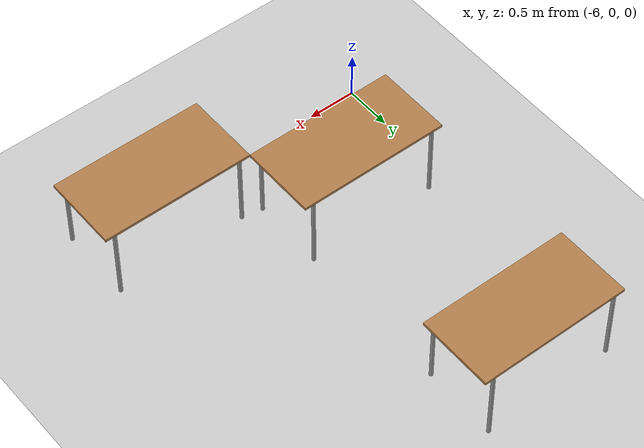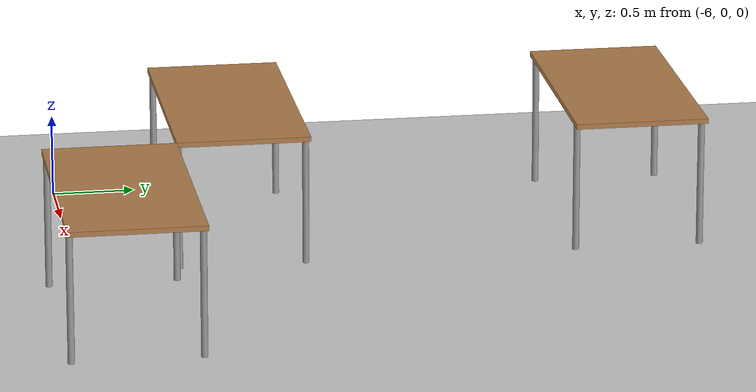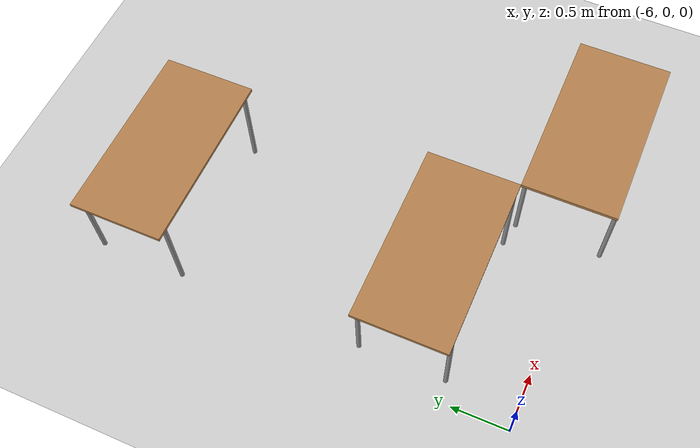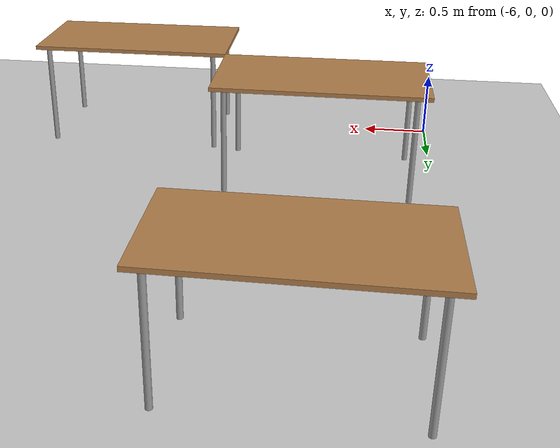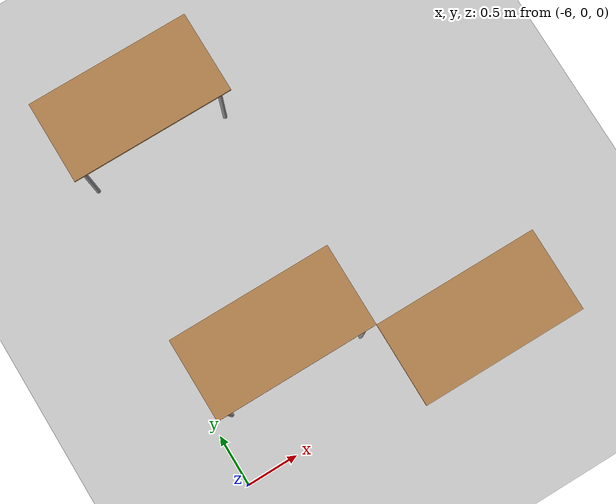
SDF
<sdf version="1.6">
 <world name="default">
  <model name="ground_plane">
   <static>1</static>
   <link name="link">
    <collision name="collision">
     <geometry><plane><normal>0 0 1</normal><size>100 100</size></plane></geometry>
     <surface><friction><ode><mu>100</mu><mu2>50</mu2></ode></friction></surface>
    </collision>
    <visual name="visual">
     <cast_shadows>0</cast_shadows>
     <geometry><plane><normal>0 0 1</normal><size>100 100</size></plane></geometry>
     <material>
      <script><uri>file://media/materials/scripts/gazebo.material</uri><name>Gazebo/Grey</name></script>
     </material>
    </visual>
   </link>
  </model>
  <model name="tablealt_0_clone_7">
   <link name="link">
    <inertial>
     <mass>1</mass>
     <inertia><ixx>1</ixx><ixy>0</ixy><ixz>0</ixz><iyy>1</iyy><iyz>0</iyz><izz>1</izz></inertia>
    </inertial>
    <visual name="back_right_leg">
     <pose>-0.68 -0.38 0.4 0 -0 0</pose>
     <geometry><cylinder><radius>0.02</radius><length>0.8</length></cylinder></geometry>
     <material>
      <script><uri>file://media/materials/scripts/gazebo.material</uri><name>Gazebo/Grey</name></script>
      <shader type="pixel"><normal_map>__default__</normal_map></shader>
      <ambient>0.3 0.3 0.3 1</ambient>
      <diffuse>0.7 0.7 0.7 1</diffuse>
      <specular>0.01 0.01 0.01 1</specular>
      <emissive>0 0 0 1</emissive>
     </material>
    </visual>
    <visual name="back_left_leg">
     <pose>-0.68 0.38 0.4 0 -0 0</pose>
     <geometry><cylinder><radius>0.02</radius><length>0.8</length></cylinder></geometry>
     <material>
      <script><uri>file://media/materials/scripts/gazebo.material</uri><name>Gazebo/Grey</name></script>
      <shader type="pixel"><normal_map>__default__</normal_map></shader>
      <ambient>0.3 0.3 0.3 1</ambient>
      <diffuse>0.7 0.7 0.7 1</diffuse>
      <specular>0.01 0.01 0.01 1</specular>
      <emissive>0 0 0 1</emissive>
     </material>
    </visual>
    <visual name="visual1">
     <pose>0 0 0.8 0 -0 0</pose>
     <geometry><box><size>1.57 0.8 0.03</size></box></geometry>
     <material>
      <script><uri>file://media/materials/scripts/gazebo.material</uri><name>Gazebo/Wood</name></script>
      <shader type="pixel"><normal_map>__default__</normal_map></shader>
      <ambient>0.92 0.92 0.68 1</ambient>
      <diffuse>1 1 1 1</diffuse>
      <specular>0.2 0.2 0.2 1</specular>
      <emissive>0 0 0 1</emissive>
     </material>
    </visual>
    <visual name="front_left_leg">
     <pose>0.68 0.38 0.4 0 -0 0</pose>
     <geometry><cylinder><radius>0.02</radius><length>0.8</length></cylinder></geometry>
     <material>
      <script><uri>file://media/materials/scripts/gazebo.material</uri><name>Gazebo/Grey</name></script>
      <shader type="pixel"><normal_map>__default__</normal_map></shader>
      <ambient>0.3 0.3 0.3 1</ambient>
      <diffuse>0.7 0.7 0.7 1</diffuse>
      <specular>0.01 0.01 0.01 1</specular>
      <emissive>0 0 0 1</emissive>
     </material>
    </visual>
    <visual name="front_right_leg">
     <pose>0.68 -0.38 0.4 0 -0 0</pose>
     <geometry><cylinder><radius>0.02</radius><length>0.8</length></cylinder></geometry>
     <material>
      <script><uri>file://media/materials/scripts/gazebo.material</uri><name>Gazebo/Grey</name></script>
      <shader type="pixel"><normal_map>__default__</normal_map></shader>
      <ambient>0.3 0.3 0.3 1</ambient>
      <diffuse>0.7 0.7 0.7 1</diffuse>
      <specular>0.01 0.01 0.01 1</specular>
      <emissive>0 0 0 1</emissive>
     </material>
    </visual>
    <collision name="front_right_leg">
     <pose>0.68 -0.38 0.4 0 -0 0</pose>
     <geometry><cylinder><radius>0.02</radius><length>0.8</length></cylinder></geometry>
     <surface>
      <friction>
       <ode><mu>1</mu><mu2>1</mu2><fdir1>0 0 0</fdir1><slip1>0</slip1><slip2>0</slip2></ode>
       <torsional>
        <coefficient>1</coefficient>
        <patch_radius>0</patch_radius>
        <surface_radius>0</surface_radius>
        <use_patch_radius>1</use_patch_radius>
        <ode><slip>0</slip></ode>
       </torsional>
      </friction>
      <bounce><restitution_coefficient>0</restitution_coefficient><threshold>1e+06</threshold></bounce>
      <contact>
       <collide_without_contact>0</collide_without_contact>
       <collide_without_contact_bitmask>1</collide_without_contact_bitmask>
       <collide_bitmask>1</collide_bitmask>
       <ode>
        <soft_cfm>0</soft_cfm>
        <soft_erp>0.2</soft_erp>
        <kp>1e+13</kp>
        <kd>1</kd>
        <max_vel>0.01</max_vel>
        <min_depth>0</min_depth>
       </ode>
       <bullet>
        <split_impulse>1</split_impulse>
        <split_impulse_penetration_threshold>-0.01</split_impulse_penetration_threshold>
        <soft_cfm>0</soft_cfm>
        <soft_erp>0.2</soft_erp>
        <kp>1e+13</kp>
        <kd>1</kd>
       </bullet>
      </contact>
     </surface>
    </collision>
    <collision name="surface">
     <pose>0 0 0.8 0 -0 0</pose>
     <geometry><box><size>1.5 0.8 0.03</size></box></geometry>
     <surface>
      <friction>
       <ode><mu>0.6</mu><mu2>0.6</mu2><fdir1>0 0 0</fdir1><slip1>0</slip1><slip2>0</slip2></ode>
       <torsional>
        <coefficient>1</coefficient>
        <patch_radius>0</patch_radius>
        <surface_radius>0</surface_radius>
        <use_patch_radius>1</use_patch_radius>
        <ode><slip>0</slip></ode>
       </torsional>
      </friction>
      <bounce><restitution_coefficient>0</restitution_coefficient><threshold>1e+06</threshold></bounce>
      <contact>
       <collide_without_contact>0</collide_without_contact>
       <collide_without_contact_bitmask>1</collide_without_contact_bitmask>
       <collide_bitmask>1</collide_bitmask>
       <ode>
        <soft_cfm>0</soft_cfm>
        <soft_erp>0.2</soft_erp>
        <kp>1e+13</kp>
        <kd>1</kd>
        <max_vel>0.01</max_vel>
        <min_depth>0</min_depth>
       </ode>
       <bullet>
        <split_impulse>1</split_impulse>
        <split_impulse_penetration_threshold>-0.01</split_impulse_penetration_threshold>
        <soft_cfm>0</soft_cfm>
        <soft_erp>0.2</soft_erp>
        <kp>1e+13</kp>
        <kd>1</kd>
       </bullet>
      </contact>
     </surface>
    </collision>
    <collision name="front_left_leg">
     <pose>0.68 0.38 0.4 0 -0 0</pose>
     <geometry><cylinder><radius>0.02</radius><length>0.8</length></cylinder></geometry>
     <surface>
      <friction>
       <ode><mu>1</mu><mu2>1</mu2><fdir1>0 0 0</fdir1><slip1>0</slip1><slip2>0</slip2></ode>
       <torsional>
        <coefficient>1</coefficient>
        <patch_radius>0</patch_radius>
        <surface_radius>0</surface_radius>
        <use_patch_radius>1</use_patch_radius>
        <ode><slip>0</slip></ode>
       </torsional>
      </friction>
      <bounce><restitution_coefficient>0</restitution_coefficient><threshold>1e+06</threshold></bounce>
      <contact>
       <collide_without_contact>0</collide_without_contact>
       <collide_without_contact_bitmask>1</collide_without_contact_bitmask>
       <collide_bitmask>1</collide_bitmask>
       <ode>
        <soft_cfm>0</soft_cfm>
        <soft_erp>0.2</soft_erp>
        <kp>1e+13</kp>
        <kd>1</kd>
        <max_vel>0.01</max_vel>
        <min_depth>0</min_depth>
       </ode>
       <bullet>
        <split_impulse>1</split_impulse>
        <split_impulse_penetration_threshold>-0.01</split_impulse_penetration_threshold>
        <soft_cfm>0</soft_cfm>
        <soft_erp>0.2</soft_erp>
        <kp>1e+13</kp>
        <kd>1</kd>
       </bullet>
      </contact>
     </surface>
    </collision>
    <collision name="back_left_leg">
     <pose>-0.68 0.38 0.4 0 -0 0</pose>
     <geometry><cylinder><radius>0.02</radius><length>0.8</length></cylinder></geometry>
     <surface>
      <friction>
       <ode><mu>1</mu><mu2>1</mu2><fdir1>0 0 0</fdir1><slip1>0</slip1><slip2>0</slip2></ode>
       <torsional>
        <coefficient>1</coefficient>
        <patch_radius>0</patch_radius>
        <surface_radius>0</surface_radius>
        <use_patch_radius>1</use_patch_radius>
        <ode><slip>0</slip></ode>
       </torsional>
      </friction>
      <bounce><restitution_coefficient>0</restitution_coefficient><threshold>1e+06</threshold></bounce>
      <contact>
       <collide_without_contact>0</collide_without_contact>
       <collide_without_contact_bitmask>1</collide_without_contact_bitmask>
       <collide_bitmask>1</collide_bitmask>
       <ode>
        <soft_cfm>0</soft_cfm>
        <soft_erp>0.2</soft_erp>
        <kp>1e+13</kp>
        <kd>1</kd>
        <max_vel>0.01</max_vel>
        <min_depth>0</min_depth>
       </ode>
       <bullet>
        <split_impulse>1</split_impulse>
        <split_impulse_penetration_threshold>-0.01</split_impulse_penetration_threshold>
        <soft_cfm>0</soft_cfm>
        <soft_erp>0.2</soft_erp>
        <kp>1e+13</kp>
        <kd>1</kd>
       </bullet>
      </contact>
     </surface>
    </collision>
    <collision name="back_right_leg">
     <pose>-0.68 -0.38 0.4 0 -0 0</pose>
     <geometry><cylinder><radius>0.02</radius><length>0.8</length></cylinder></geometry>
     <surface>
      <friction>
       <ode><mu>1</mu><mu2>1</mu2><fdir1>0 0 0</fdir1><slip1>0</slip1><slip2>0</slip2></ode>
       <torsional>
        <coefficient>1</coefficient>
        <patch_radius>0</patch_radius>
        <surface_radius>0</surface_radius>
        <use_patch_radius>1</use_patch_radius>
        <ode><slip>0</slip></ode>
       </torsional>
      </friction>
      <bounce><restitution_coefficient>0</restitution_coefficient><threshold>1e+06</threshold></bounce>
      <contact>
       <collide_without_contact>0</collide_without_contact>
       <collide_without_contact_bitmask>1</collide_without_contact_bitmask>
       <collide_bitmask>1</collide_bitmask>
       <ode>
        <soft_cfm>0</soft_cfm>
        <soft_erp>0.2</soft_erp>
        <kp>1e+13</kp>
        <kd>1</kd>
        <max_vel>0.01</max_vel>
        <min_depth>0</min_depth>
       </ode>
       <bullet>
        <split_impulse>1</split_impulse>
        <split_impulse_penetration_threshold>-0.01</split_impulse_penetration_threshold>
        <soft_cfm>0</soft_cfm>
        <soft_erp>0.2</soft_erp>
        <kp>1e+13</kp>
        <kd>1</kd>
       </bullet>
      </contact>
     </surface>
    </collision>
   </link>
   <static>1</static>
   <pose>-5.13 3.39 0 0 -0 0</pose>
  </model>
  <model name="tablealt_0_clone_18">
   <link name="link">
    <inertial>
     <mass>1</mass>
     <inertia><ixx>1</ixx><ixy>0</ixy><ixz>0</ixz><iyy>1</iyy><iyz>0</iyz><izz>1</izz></inertia>
    </inertial>
    <visual name="back_right_leg">
     <pose>-0.68 -0.38 0.4 0 -0 0</pose>
     <geometry><cylinder><radius>0.02</radius><length>0.8</length></cylinder></geometry>
     <material>
      <script><uri>file://media/materials/scripts/gazebo.material</uri><name>Gazebo/Grey</name></script>
      <shader type="pixel"><normal_map>__default__</normal_map></shader>
      <ambient>0.3 0.3 0.3 1</ambient>
      <diffuse>0.7 0.7 0.7 1</diffuse>
      <specular>0.01 0.01 0.01 1</specular>
      <emissive>0 0 0 1</emissive>
     </material>
    </visual>
    <visual name="back_left_leg">
     <pose>-0.68 0.38 0.4 0 -0 0</pose>
     <geometry><cylinder><radius>0.02</radius><length>0.8</length></cylinder></geometry>
     <material>
      <script><uri>file://media/materials/scripts/gazebo.material</uri><name>Gazebo/Grey</name></script>
      <shader type="pixel"><normal_map>__default__</normal_map></shader>
      <ambient>0.3 0.3 0.3 1</ambient>
      <diffuse>0.7 0.7 0.7 1</diffuse>
      <specular>0.01 0.01 0.01 1</specular>
      <emissive>0 0 0 1</emissive>
     </material>
    </visual>
    <visual name="visual1">
     <pose>0 0 0.8 0 -0 0</pose>
     <geometry><box><size>1.57 0.8 0.03</size></box></geometry>
     <material>
      <script><uri>file://media/materials/scripts/gazebo.material</uri><name>Gazebo/Wood</name></script>
      <shader type="pixel"><normal_map>__default__</normal_map></shader>
      <ambient>0.92 0.92 0.68 1</ambient>
      <diffuse>1 1 1 1</diffuse>
      <specular>0.2 0.2 0.2 1</specular>
      <emissive>0 0 0 1</emissive>
     </material>
    </visual>
    <visual name="front_left_leg">
     <pose>0.68 0.38 0.4 0 -0 0</pose>
     <geometry><cylinder><radius>0.02</radius><length>0.8</length></cylinder></geometry>
     <material>
      <script><uri>file://media/materials/scripts/gazebo.material</uri><name>Gazebo/Grey</name></script>
      <shader type="pixel"><normal_map>__default__</normal_map></shader>
      <ambient>0.3 0.3 0.3 1</ambient>
      <diffuse>0.7 0.7 0.7 1</diffuse>
      <specular>0.01 0.01 0.01 1</specular>
      <emissive>0 0 0 1</emissive>
     </material>
    </visual>
    <visual name="front_right_leg">
     <pose>0.68 -0.38 0.4 0 -0 0</pose>
     <geometry><cylinder><radius>0.02</radius><length>0.8</length></cylinder></geometry>
     <material>
      <script><uri>file://media/materials/scripts/gazebo.material</uri><name>Gazebo/Grey</name></script>
      <shader type="pixel"><normal_map>__default__</normal_map></shader>
      <ambient>0.3 0.3 0.3 1</ambient>
      <diffuse>0.7 0.7 0.7 1</diffuse>
      <specular>0.01 0.01 0.01 1</specular>
      <emissive>0 0 0 1</emissive>
     </material>
    </visual>
    <collision name="front_right_leg">
     <pose>0.68 -0.38 0.4 0 -0 0</pose>
     <geometry><cylinder><radius>0.02</radius><length>0.8</length></cylinder></geometry>
     <surface>
      <friction>
       <ode><mu>1</mu><mu2>1</mu2><fdir1>0 0 0</fdir1><slip1>0</slip1><slip2>0</slip2></ode>
       <torsional>
        <coefficient>1</coefficient>
        <patch_radius>0</patch_radius>
        <surface_radius>0</surface_radius>
        <use_patch_radius>1</use_patch_radius>
        <ode><slip>0</slip></ode>
       </torsional>
      </friction>
      <bounce><restitution_coefficient>0</restitution_coefficient><threshold>1e+06</threshold></bounce>
      <contact>
       <collide_without_contact>0</collide_without_contact>
       <collide_without_contact_bitmask>1</collide_without_contact_bitmask>
       <collide_bitmask>1</collide_bitmask>
       <ode>
        <soft_cfm>0</soft_cfm>
        <soft_erp>0.2</soft_erp>
        <kp>1e+13</kp>
        <kd>1</kd>
        <max_vel>0.01</max_vel>
        <min_depth>0</min_depth>
       </ode>
       <bullet>
        <split_impulse>1</split_impulse>
        <split_impulse_penetration_threshold>-0.01</split_impulse_penetration_threshold>
        <soft_cfm>0</soft_cfm>
        <soft_erp>0.2</soft_erp>
        <kp>1e+13</kp>
        <kd>1</kd>
       </bullet>
      </contact>
     </surface>
    </collision>
    <collision name="surface">
     <pose>0 0 0.8 0 -0 0</pose>
     <geometry><box><size>1.5 0.8 0.03</size></box></geometry>
     <surface>
      <friction>
       <ode><mu>0.6</mu><mu2>0.6</mu2><fdir1>0 0 0</fdir1><slip1>0</slip1><slip2>0</slip2></ode>
       <torsional>
        <coefficient>1</coefficient>
        <patch_radius>0</patch_radius>
        <surface_radius>0</surface_radius>
        <use_patch_radius>1</use_patch_radius>
        <ode><slip>0</slip></ode>
       </torsional>
      </friction>
      <bounce><restitution_coefficient>0</restitution_coefficient><threshold>1e+06</threshold></bounce>
      <contact>
       <collide_without_contact>0</collide_without_contact>
       <collide_without_contact_bitmask>1</collide_without_contact_bitmask>
       <collide_bitmask>1</collide_bitmask>
       <ode>
        <soft_cfm>0</soft_cfm>
        <soft_erp>0.2</soft_erp>
        <kp>1e+13</kp>
        <kd>1</kd>
        <max_vel>0.01</max_vel>
        <min_depth>0</min_depth>
       </ode>
       <bullet>
        <split_impulse>1</split_impulse>
        <split_impulse_penetration_threshold>-0.01</split_impulse_penetration_threshold>
        <soft_cfm>0</soft_cfm>
        <soft_erp>0.2</soft_erp>
        <kp>1e+13</kp>
        <kd>1</kd>
       </bullet>
      </contact>
     </surface>
    </collision>
    <collision name="front_left_leg">
     <pose>0.68 0.38 0.4 0 -0 0</pose>
     <geometry><cylinder><radius>0.02</radius><length>0.8</length></cylinder></geometry>
     <surface>
      <friction>
       <ode><mu>1</mu><mu2>1</mu2><fdir1>0 0 0</fdir1><slip1>0</slip1><slip2>0</slip2></ode>
       <torsional>
        <coefficient>1</coefficient>
        <patch_radius>0</patch_radius>
        <surface_radius>0</surface_radius>
        <use_patch_radius>1</use_patch_radius>
        <ode><slip>0</slip></ode>
       </torsional>
      </friction>
      <bounce><restitution_coefficient>0</restitution_coefficient><threshold>1e+06</threshold></bounce>
      <contact>
       <collide_without_contact>0</collide_without_contact>
       <collide_without_contact_bitmask>1</collide_without_contact_bitmask>
       <collide_bitmask>1</collide_bitmask>
       <ode>
        <soft_cfm>0</soft_cfm>
        <soft_erp>0.2</soft_erp>
        <kp>1e+13</kp>
        <kd>1</kd>
        <max_vel>0.01</max_vel>
        <min_depth>0</min_depth>
       </ode>
       <bullet>
        <split_impulse>1</split_impulse>
        <split_impulse_penetration_threshold>-0.01</split_impulse_penetration_threshold>
        <soft_cfm>0</soft_cfm>
        <soft_erp>0.2</soft_erp>
        <kp>1e+13</kp>
        <kd>1</kd>
       </bullet>
      </contact>
     </surface>
    </collision>
    <collision name="back_left_leg">
     <pose>-0.68 0.38 0.4 0 -0 0</pose>
     <geometry><cylinder><radius>0.02</radius><length>0.8</length></cylinder></geometry>
     <surface>
      <friction>
       <ode><mu>1</mu><mu2>1</mu2><fdir1>0 0 0</fdir1><slip1>0</slip1><slip2>0</slip2></ode>
       <torsional>
        <coefficient>1</coefficient>
        <patch_radius>0</patch_radius>
        <surface_radius>0</surface_radius>
        <use_patch_radius>1</use_patch_radius>
        <ode><slip>0</slip></ode>
       </torsional>
      </friction>
      <bounce><restitution_coefficient>0</restitution_coefficient><threshold>1e+06</threshold></bounce>
      <contact>
       <collide_without_contact>0</collide_without_contact>
       <collide_without_contact_bitmask>1</collide_without_contact_bitmask>
       <collide_bitmask>1</collide_bitmask>
       <ode>
        <soft_cfm>0</soft_cfm>
        <soft_erp>0.2</soft_erp>
        <kp>1e+13</kp>
        <kd>1</kd>
        <max_vel>0.01</max_vel>
        <min_depth>0</min_depth>
       </ode>
       <bullet>
        <split_impulse>1</split_impulse>
        <split_impulse_penetration_threshold>-0.01</split_impulse_penetration_threshold>
        <soft_cfm>0</soft_cfm>
        <soft_erp>0.2</soft_erp>
        <kp>1e+13</kp>
        <kd>1</kd>
       </bullet>
      </contact>
     </surface>
    </collision>
    <collision name="back_right_leg">
     <pose>-0.68 -0.38 0.4 0 -0 0</pose>
     <geometry><cylinder><radius>0.02</radius><length>0.8</length></cylinder></geometry>
     <surface>
      <friction>
       <ode><mu>1</mu><mu2>1</mu2><fdir1>0 0 0</fdir1><slip1>0</slip1><slip2>0</slip2></ode>
       <torsional>
        <coefficient>1</coefficient>
        <patch_radius>0</patch_radius>
        <surface_radius>0</surface_radius>
        <use_patch_radius>1</use_patch_radius>
        <ode><slip>0</slip></ode>
       </torsional>
      </friction>
      <bounce><restitution_coefficient>0</restitution_coefficient><threshold>1e+06</threshold></bounce>
      <contact>
       <collide_without_contact>0</collide_without_contact>
       <collide_without_contact_bitmask>1</collide_without_contact_bitmask>
       <collide_bitmask>1</collide_bitmask>
       <ode>
        <soft_cfm>0</soft_cfm>
        <soft_erp>0.2</soft_erp>
        <kp>1e+13</kp>
        <kd>1</kd>
        <max_vel>0.01</max_vel>
        <min_depth>0</min_depth>
       </ode>
       <bullet>
        <split_impulse>1</split_impulse>
        <split_impulse_penetration_threshold>-0.01</split_impulse_penetration_threshold>
        <soft_cfm>0</soft_cfm>
        <soft_erp>0.2</soft_erp>
        <kp>1e+13</kp>
        <kd>1</kd>
       </bullet>
      </contact>
     </surface>
    </collision>
   </link>
   <static>1</static>
   <pose>-5.13 0.99 0 0 -0 0</pose>
  </model>
  <model name="tablealt_0_clone_22">
   <link name="link">
    <inertial>
     <mass>1</mass>
     <inertia><ixx>1</ixx><ixy>0</ixy><ixz>0</ixz><iyy>1</iyy><iyz>0</iyz><izz>1</izz></inertia>
    </inertial>
    <visual name="back_right_leg">
     <pose>-0.68 -0.38 0.4 0 -0 0</pose>
     <geometry><cylinder><radius>0.02</radius><length>0.8</length></cylinder></geometry>
     <material>
      <script><uri>file://media/materials/scripts/gazebo.material</uri><name>Gazebo/Grey</name></script>
      <shader type="pixel"><normal_map>__default__</normal_map></shader>
      <ambient>0.3 0.3 0.3 1</ambient>
      <diffuse>0.7 0.7 0.7 1</diffuse>
      <specular>0.01 0.01 0.01 1</specular>
      <emissive>0 0 0 1</emissive>
     </material>
    </visual>
    <visual name="back_left_leg">
     <pose>-0.68 0.38 0.4 0 -0 0</pose>
     <geometry><cylinder><radius>0.02</radius><length>0.8</length></cylinder></geometry>
     <material>
      <script><uri>file://media/materials/scripts/gazebo.material</uri><name>Gazebo/Grey</name></script>
      <shader type="pixel"><normal_map>__default__</normal_map></shader>
      <ambient>0.3 0.3 0.3 1</ambient>
      <diffuse>0.7 0.7 0.7 1</diffuse>
      <specular>0.01 0.01 0.01 1</specular>
      <emissive>0 0 0 1</emissive>
     </material>
    </visual>
    <visual name="visual1">
     <pose>0 0 0.8 0 -0 0</pose>
     <geometry><box><size>1.57 0.8 0.03</size></box></geometry>
     <material>
      <script><uri>file://media/materials/scripts/gazebo.material</uri><name>Gazebo/Wood</name></script>
      <shader type="pixel"><normal_map>__default__</normal_map></shader>
      <ambient>0.92 0.92 0.68 1</ambient>
      <diffuse>1 1 1 1</diffuse>
      <specular>0.2 0.2 0.2 1</specular>
      <emissive>0 0 0 1</emissive>
     </material>
    </visual>
    <visual name="front_left_leg">
     <pose>0.68 0.38 0.4 0 -0 0</pose>
     <geometry><cylinder><radius>0.02</radius><length>0.8</length></cylinder></geometry>
     <material>
      <script><uri>file://media/materials/scripts/gazebo.material</uri><name>Gazebo/Grey</name></script>
      <shader type="pixel"><normal_map>__default__</normal_map></shader>
      <ambient>0.3 0.3 0.3 1</ambient>
      <diffuse>0.7 0.7 0.7 1</diffuse>
      <specular>0.01 0.01 0.01 1</specular>
      <emissive>0 0 0 1</emissive>
     </material>
    </visual>
    <visual name="front_right_leg">
     <pose>0.68 -0.38 0.4 0 -0 0</pose>
     <geometry><cylinder><radius>0.02</radius><length>0.8</length></cylinder></geometry>
     <material>
      <script><uri>file://media/materials/scripts/gazebo.material</uri><name>Gazebo/Grey</name></script>
      <shader type="pixel"><normal_map>__default__</normal_map></shader>
      <ambient>0.3 0.3 0.3 1</ambient>
      <diffuse>0.7 0.7 0.7 1</diffuse>
      <specular>0.01 0.01 0.01 1</specular>
      <emissive>0 0 0 1</emissive>
     </material>
    </visual>
    <collision name="front_right_leg">
     <pose>0.68 -0.38 0.4 0 -0 0</pose>
     <geometry><cylinder><radius>0.02</radius><length>0.8</length></cylinder></geometry>
     <surface>
      <friction>
       <ode><mu>1</mu><mu2>1</mu2><fdir1>0 0 0</fdir1><slip1>0</slip1><slip2>0</slip2></ode>
       <torsional>
        <coefficient>1</coefficient>
        <patch_radius>0</patch_radius>
        <surface_radius>0</surface_radius>
        <use_patch_radius>1</use_patch_radius>
        <ode><slip>0</slip></ode>
       </torsional>
      </friction>
      <bounce><restitution_coefficient>0</restitution_coefficient><threshold>1e+06</threshold></bounce>
      <contact>
       <collide_without_contact>0</collide_without_contact>
       <collide_without_contact_bitmask>1</collide_without_contact_bitmask>
       <collide_bitmask>1</collide_bitmask>
       <ode>
        <soft_cfm>0</soft_cfm>
        <soft_erp>0.2</soft_erp>
        <kp>1e+13</kp>
        <kd>1</kd>
        <max_vel>0.01</max_vel>
        <min_depth>0</min_depth>
       </ode>
       <bullet>
        <split_impulse>1</split_impulse>
        <split_impulse_penetration_threshold>-0.01</split_impulse_penetration_threshold>
        <soft_cfm>0</soft_cfm>
        <soft_erp>0.2</soft_erp>
        <kp>1e+13</kp>
        <kd>1</kd>
       </bullet>
      </contact>
     </surface>
    </collision>
    <collision name="surface">
     <pose>0 0 0.8 0 -0 0</pose>
     <geometry><box><size>1.5 0.8 0.03</size></box></geometry>
     <surface>
      <friction>
       <ode><mu>0.6</mu><mu2>0.6</mu2><fdir1>0 0 0</fdir1><slip1>0</slip1><slip2>0</slip2></ode>
       <torsional>
        <coefficient>1</coefficient>
        <patch_radius>0</patch_radius>
        <surface_radius>0</surface_radius>
        <use_patch_radius>1</use_patch_radius>
        <ode><slip>0</slip></ode>
       </torsional>
      </friction>
      <bounce><restitution_coefficient>0</restitution_coefficient><threshold>1e+06</threshold></bounce>
      <contact>
       <collide_without_contact>0</collide_without_contact>
       <collide_without_contact_bitmask>1</collide_without_contact_bitmask>
       <collide_bitmask>1</collide_bitmask>
       <ode>
        <soft_cfm>0</soft_cfm>
        <soft_erp>0.2</soft_erp>
        <kp>1e+13</kp>
        <kd>1</kd>
        <max_vel>0.01</max_vel>
        <min_depth>0</min_depth>
       </ode>
       <bullet>
        <split_impulse>1</split_impulse>
        <split_impulse_penetration_threshold>-0.01</split_impulse_penetration_threshold>
        <soft_cfm>0</soft_cfm>
        <soft_erp>0.2</soft_erp>
        <kp>1e+13</kp>
        <kd>1</kd>
       </bullet>
      </contact>
     </surface>
    </collision>
    <collision name="front_left_leg">
     <pose>0.68 0.38 0.4 0 -0 0</pose>
     <geometry><cylinder><radius>0.02</radius><length>0.8</length></cylinder></geometry>
     <surface>
      <friction>
       <ode><mu>1</mu><mu2>1</mu2><fdir1>0 0 0</fdir1><slip1>0</slip1><slip2>0</slip2></ode>
       <torsional>
        <coefficient>1</coefficient>
        <patch_radius>0</patch_radius>
        <surface_radius>0</surface_radius>
        <use_patch_radius>1</use_patch_radius>
        <ode><slip>0</slip></ode>
       </torsional>
      </friction>
      <bounce><restitution_coefficient>0</restitution_coefficient><threshold>1e+06</threshold></bounce>
      <contact>
       <collide_without_contact>0</collide_without_contact>
       <collide_without_contact_bitmask>1</collide_without_contact_bitmask>
       <collide_bitmask>1</collide_bitmask>
       <ode>
        <soft_cfm>0</soft_cfm>
        <soft_erp>0.2</soft_erp>
        <kp>1e+13</kp>
        <kd>1</kd>
        <max_vel>0.01</max_vel>
        <min_depth>0</min_depth>
       </ode>
       <bullet>
        <split_impulse>1</split_impulse>
        <split_impulse_penetration_threshold>-0.01</split_impulse_penetration_threshold>
        <soft_cfm>0</soft_cfm>
        <soft_erp>0.2</soft_erp>
        <kp>1e+13</kp>
        <kd>1</kd>
       </bullet>
      </contact>
     </surface>
    </collision>
    <collision name="back_left_leg">
     <pose>-0.68 0.38 0.4 0 -0 0</pose>
     <geometry><cylinder><radius>0.02</radius><length>0.8</length></cylinder></geometry>
     <surface>
      <friction>
       <ode><mu>1</mu><mu2>1</mu2><fdir1>0 0 0</fdir1><slip1>0</slip1><slip2>0</slip2></ode>
       <torsional>
        <coefficient>1</coefficient>
        <patch_radius>0</patch_radius>
        <surface_radius>0</surface_radius>
        <use_patch_radius>1</use_patch_radius>
        <ode><slip>0</slip></ode>
       </torsional>
      </friction>
      <bounce><restitution_coefficient>0</restitution_coefficient><threshold>1e+06</threshold></bounce>
      <contact>
       <collide_without_contact>0</collide_without_contact>
       <collide_without_contact_bitmask>1</collide_without_contact_bitmask>
       <collide_bitmask>1</collide_bitmask>
       <ode>
        <soft_cfm>0</soft_cfm>
        <soft_erp>0.2</soft_erp>
        <kp>1e+13</kp>
        <kd>1</kd>
        <max_vel>0.01</max_vel>
        <min_depth>0</min_depth>
       </ode>
       <bullet>
        <split_impulse>1</split_impulse>
        <split_impulse_penetration_threshold>-0.01</split_impulse_penetration_threshold>
        <soft_cfm>0</soft_cfm>
        <soft_erp>0.2</soft_erp>
        <kp>1e+13</kp>
        <kd>1</kd>
       </bullet>
      </contact>
     </surface>
    </collision>
    <collision name="back_right_leg">
     <pose>-0.68 -0.38 0.4 0 -0 0</pose>
     <geometry><cylinder><radius>0.02</radius><length>0.8</length></cylinder></geometry>
     <surface>
      <friction>
       <ode><mu>1</mu><mu2>1</mu2><fdir1>0 0 0</fdir1><slip1>0</slip1><slip2>0</slip2></ode>
       <torsional>
        <coefficient>1</coefficient>
        <patch_radius>0</patch_radius>
        <surface_radius>0</surface_radius>
        <use_patch_radius>1</use_patch_radius>
        <ode><slip>0</slip></ode>
       </torsional>
      </friction>
      <bounce><restitution_coefficient>0</restitution_coefficient><threshold>1e+06</threshold></bounce>
      <contact>
       <collide_without_contact>0</collide_without_contact>
       <collide_without_contact_bitmask>1</collide_without_contact_bitmask>
       <collide_bitmask>1</collide_bitmask>
       <ode>
        <soft_cfm>0</soft_cfm>
        <soft_erp>0.2</soft_erp>
        <kp>1e+13</kp>
        <kd>1</kd>
        <max_vel>0.01</max_vel>
        <min_depth>0</min_depth>
       </ode>
       <bullet>
        <split_impulse>1</split_impulse>
        <split_impulse_penetration_threshold>-0.01</split_impulse_penetration_threshold>
        <soft_cfm>0</soft_cfm>
        <soft_erp>0.2</soft_erp>
        <kp>1e+13</kp>
        <kd>1</kd>
       </bullet>
      </contact>
     </surface>
    </collision>
   </link>
   <static>1</static>
   <pose>-3.56 0.19 0 0 -0 0</pose>
  </model>
 </world>
</sdf>
